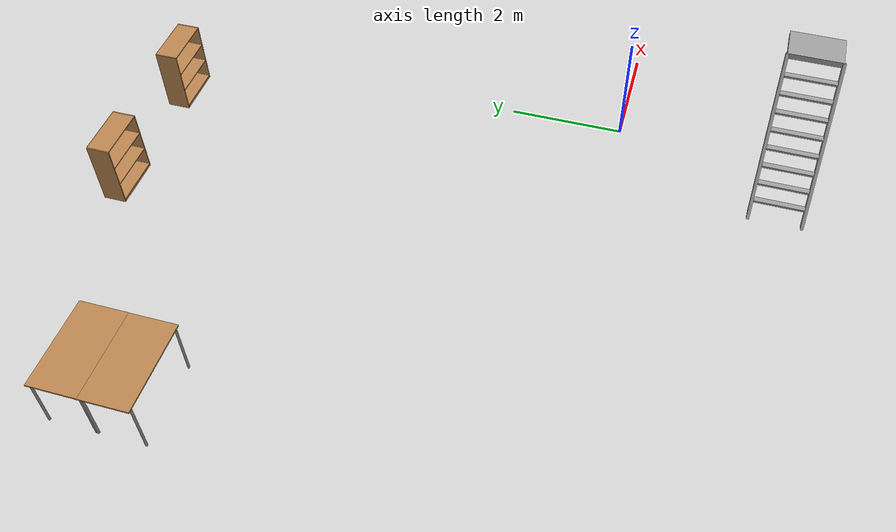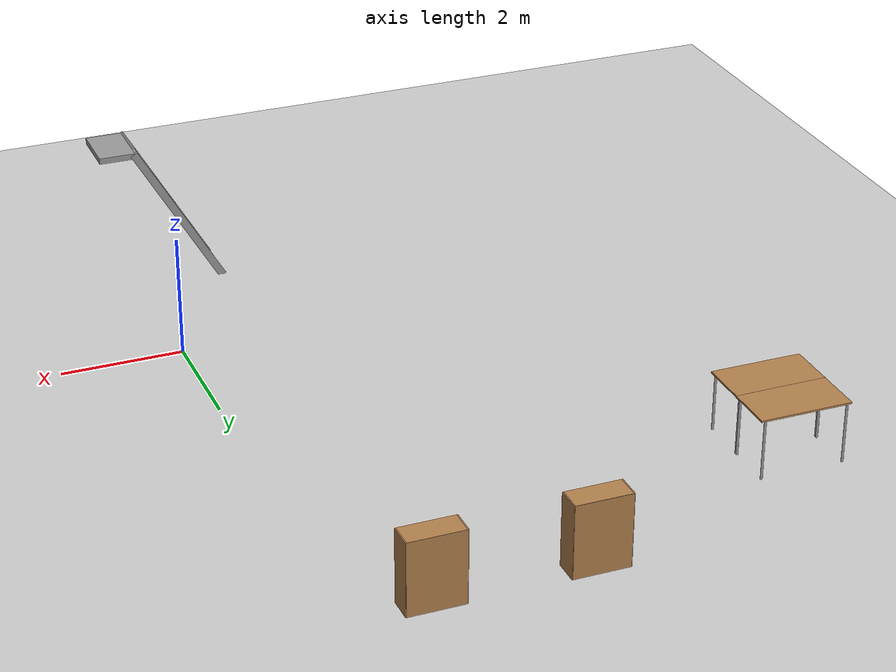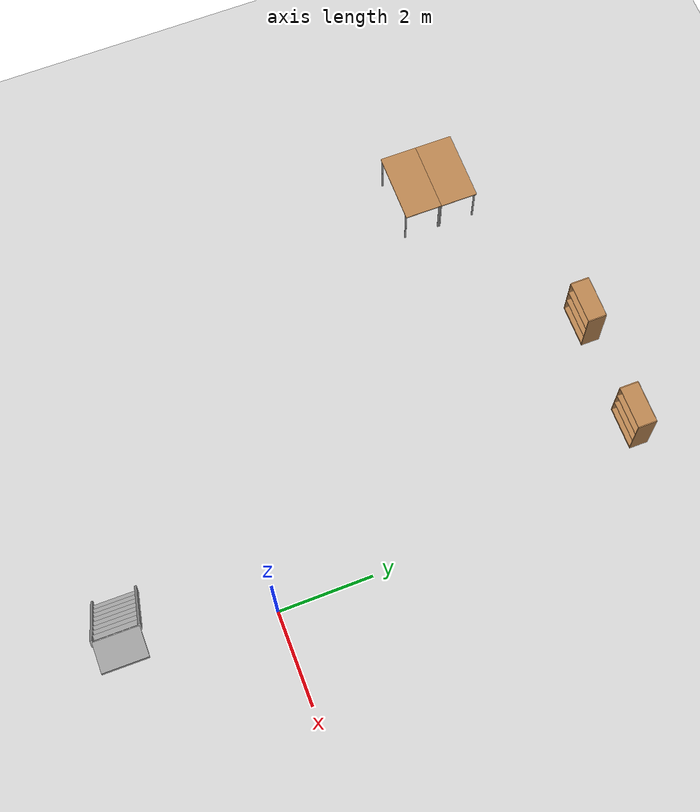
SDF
<sdf version="1.7">
 <world name="house_interior">
  <light name="sun" type="directional">
   <pose>0 0 10 0 -0 0</pose>
   <diffuse>0.8 0.8 0.8 1</diffuse>
   <specular>0.2 0.2 0.2 1</specular>
   <attenuation>
    <range>1000</range>
    <constant>0.9</constant>
    <linear>0.01</linear>
    <quadratic>0.001</quadratic>
   </attenuation>
   <direction>-0.5 0.1 -0.9</direction>
   <spot><inner_angle>0</inner_angle><outer_angle>0</outer_angle><falloff>0</falloff></spot>
  </light>
  <model name="ground_plane">
   <static>1</static>
   <link name="link">
    <collision name="collision">
     <geometry><plane><normal>0 0 1</normal><size>100 100</size></plane></geometry>
     <surface><friction><ode><mu>100</mu><mu2>50</mu2></ode></friction></surface>
    </collision>
    <visual name="visual">
     <cast_shadows>0</cast_shadows>
     <geometry><plane><normal>0 0 1</normal><size>100 100</size></plane></geometry>
     <material>
      <script><uri>file://media/materials/scripts/gazebo.material</uri><name>Gazebo/Grey</name></script>
     </material>
    </visual>
   </link>
  </model>
  <gravity>0 0 -9.8</gravity>
  <magnetic_field>6e-06 2.3e-05 -4.2e-05</magnetic_field>
  <atmosphere type="adiabatic"/>
  <physics type="ode">
   <max_step_size>0.001</max_step_size>
   <real_time_factor>1</real_time_factor>
   <real_time_update_rate>1000</real_time_update_rate>
  </physics>
  <scene><ambient>0.4 0.4 0.4 1</ambient><background>0.7 0.7 0.7 1</background><shadows>1</shadows></scene>
  <audio><device>default</device></audio>
  <spherical_coordinates>
   <surface_model>EARTH_WGS84</surface_model>
   <latitude_deg>0</latitude_deg>
   <longitude_deg>0</longitude_deg>
   <elevation>0</elevation>
   <heading_deg>0</heading_deg>
  </spherical_coordinates>
  <model name="table">
   <static>1</static>
   <link name="link">
    <collision name="surface">
     <pose>0 0 1 0 -0 0</pose>
     <geometry><box><size>1.5 0.8 0.03</size></box></geometry>
     <surface><friction><ode><mu>0.6</mu><mu2>0.6</mu2></ode></friction></surface>
    </collision>
    <visual name="visual1">
     <pose>0 0 1 0 -0 0</pose>
     <geometry><box><size>1.5 0.8 0.03</size></box></geometry>
     <material>
      <script><uri>file://media/materials/scripts/gazebo.material</uri><name>Gazebo/Wood</name></script>
     </material>
    </visual>
    <collision name="front_left_leg">
     <pose>0.68 0.38 0.5 0 -0 0</pose>
     <geometry><cylinder><radius>0.02</radius><length>1</length></cylinder></geometry>
    </collision>
    <visual name="front_left_leg">
     <pose>0.68 0.38 0.5 0 -0 0</pose>
     <geometry><cylinder><radius>0.02</radius><length>1</length></cylinder></geometry>
     <material>
      <script><uri>file://media/materials/scripts/gazebo.material</uri><name>Gazebo/Grey</name></script>
     </material>
    </visual>
    <collision name="front_right_leg">
     <pose>0.68 -0.38 0.5 0 -0 0</pose>
     <geometry><cylinder><radius>0.02</radius><length>1</length></cylinder></geometry>
    </collision>
    <visual name="front_right_leg">
     <pose>0.68 -0.38 0.5 0 -0 0</pose>
     <geometry><cylinder><radius>0.02</radius><length>1</length></cylinder></geometry>
     <material>
      <script><uri>file://media/materials/scripts/gazebo.material</uri><name>Gazebo/Grey</name></script>
     </material>
    </visual>
    <collision name="back_right_leg">
     <pose>-0.68 -0.38 0.5 0 -0 0</pose>
     <geometry><cylinder><radius>0.02</radius><length>1</length></cylinder></geometry>
    </collision>
    <visual name="back_right_leg">
     <pose>-0.68 -0.38 0.5 0 -0 0</pose>
     <geometry><cylinder><radius>0.02</radius><length>1</length></cylinder></geometry>
     <material>
      <script><uri>file://media/materials/scripts/gazebo.material</uri><name>Gazebo/Grey</name></script>
     </material>
    </visual>
    <collision name="back_left_leg">
     <pose>-0.68 0.38 0.5 0 -0 0</pose>
     <geometry><cylinder><radius>0.02</radius><length>1</length></cylinder></geometry>
    </collision>
    <visual name="back_left_leg">
     <pose>-0.68 0.38 0.5 0 -0 0</pose>
     <geometry><cylinder><radius>0.02</radius><length>1</length></cylinder></geometry>
     <material>
      <script><uri>file://media/materials/scripts/gazebo.material</uri><name>Gazebo/Grey</name></script>
     </material>
    </visual>
   </link>
   <pose>-7.46885 6.52456 0 0 -0 0</pose>
  </model>
  <model name="bookshelf">
   <static>1</static>
   <link name="link">
    <inertial><mass>1</mass></inertial>
    <collision name="back">
     <pose>0 0.005 0.6 0 -0 0</pose>
     <geometry><box><size>0.9 0.01 1.2</size></box></geometry>
    </collision>
    <visual name="visual1">
     <pose>0 0.005 0.6 0 -0 0</pose>
     <geometry><box><size>0.9 0.01 1.2</size></box></geometry>
     <material>
      <script><uri>file://media/materials/scripts/gazebo.material</uri><name>Gazebo/Wood</name></script>
     </material>
    </visual>
    <collision name="left_side">
     <pose>0.45 -0.195 0.6 0 -0 0</pose>
     <geometry><box><size>0.02 0.4 1.2</size></box></geometry>
    </collision>
    <visual name="visual2">
     <pose>0.45 -0.195 0.6 0 -0 0</pose>
     <geometry><box><size>0.02 0.4 1.2</size></box></geometry>
     <material>
      <script><uri>file://media/materials/scripts/gazebo.material</uri><name>Gazebo/Wood</name></script>
     </material>
    </visual>
    <collision name="right_side">
     <pose>-0.45 -0.195 0.6 0 -0 0</pose>
     <geometry><box><size>0.02 0.4 1.2</size></box></geometry>
    </collision>
    <visual name="visual3">
     <pose>-0.45 -0.195 0.6 0 -0 0</pose>
     <geometry><box><size>0.02 0.4 1.2</size></box></geometry>
     <material>
      <script><uri>file://media/materials/scripts/gazebo.material</uri><name>Gazebo/Wood</name></script>
     </material>
    </visual>
    <collision name="bottom">
     <pose>0 -0.195 0.03 0 -0 0</pose>
     <geometry><box><size>0.88 0.4 0.06</size></box></geometry>
    </collision>
    <visual name="visual4">
     <pose>0 -0.195 0.03 0 -0 0</pose>
     <geometry><box><size>0.88 0.4 0.06</size></box></geometry>
     <material>
      <script><uri>file://media/materials/scripts/gazebo.material</uri><name>Gazebo/Wood</name></script>
     </material>
    </visual>
    <collision name="top">
     <pose>0 -0.195 1.19 0 -0 0</pose>
     <geometry><box><size>0.88 0.4 0.02</size></box></geometry>
    </collision>
    <visual name="visual5">
     <pose>0 -0.195 1.19 0 -0 0</pose>
     <geometry><box><size>0.88 0.4 0.02</size></box></geometry>
     <material>
      <script><uri>file://media/materials/scripts/gazebo.material</uri><name>Gazebo/Wood</name></script>
     </material>
    </visual>
    <collision name="low_shelf">
     <pose>0 -0.195 0.43 0 -0 0</pose>
     <geometry><box><size>0.88 0.4 0.02</size></box></geometry>
    </collision>
    <visual name="visual6">
     <pose>0 -0.195 0.43 0 -0 0</pose>
     <geometry><box><size>0.88 0.4 0.02</size></box></geometry>
     <material>
      <script><uri>file://media/materials/scripts/gazebo.material</uri><name>Gazebo/Wood</name></script>
     </material>
    </visual>
    <collision name="high_shelf">
     <pose>0 -0.195 0.8 0 -0 0</pose>
     <geometry><box><size>0.88 0.4 0.02</size></box></geometry>
    </collision>
    <visual name="visual7">
     <pose>0 -0.195 0.8 0 -0 0</pose>
     <geometry><box><size>0.88 0.4 0.02</size></box></geometry>
     <material>
      <script><uri>file://media/materials/scripts/gazebo.material</uri><name>Gazebo/Wood</name></script>
     </material>
    </visual>
   </link>
   <pose>-3.55591 8.27448 0 0 -0 0</pose>
  </model>
  <model name="bookshelf_0">
   <static>1</static>
   <link name="link">
    <inertial><mass>1</mass></inertial>
    <collision name="back">
     <pose>0 0.005 0.6 0 -0 0</pose>
     <geometry><box><size>0.9 0.01 1.2</size></box></geometry>
    </collision>
    <visual name="visual1">
     <pose>0 0.005 0.6 0 -0 0</pose>
     <geometry><box><size>0.9 0.01 1.2</size></box></geometry>
     <material>
      <script><uri>file://media/materials/scripts/gazebo.material</uri><name>Gazebo/Wood</name></script>
     </material>
    </visual>
    <collision name="left_side">
     <pose>0.45 -0.195 0.6 0 -0 0</pose>
     <geometry><box><size>0.02 0.4 1.2</size></box></geometry>
    </collision>
    <visual name="visual2">
     <pose>0.45 -0.195 0.6 0 -0 0</pose>
     <geometry><box><size>0.02 0.4 1.2</size></box></geometry>
     <material>
      <script><uri>file://media/materials/scripts/gazebo.material</uri><name>Gazebo/Wood</name></script>
     </material>
    </visual>
    <collision name="right_side">
     <pose>-0.45 -0.195 0.6 0 -0 0</pose>
     <geometry><box><size>0.02 0.4 1.2</size></box></geometry>
    </collision>
    <visual name="visual3">
     <pose>-0.45 -0.195 0.6 0 -0 0</pose>
     <geometry><box><size>0.02 0.4 1.2</size></box></geometry>
     <material>
      <script><uri>file://media/materials/scripts/gazebo.material</uri><name>Gazebo/Wood</name></script>
     </material>
    </visual>
    <collision name="bottom">
     <pose>0 -0.195 0.03 0 -0 0</pose>
     <geometry><box><size>0.88 0.4 0.06</size></box></geometry>
    </collision>
    <visual name="visual4">
     <pose>0 -0.195 0.03 0 -0 0</pose>
     <geometry><box><size>0.88 0.4 0.06</size></box></geometry>
     <material>
      <script><uri>file://media/materials/scripts/gazebo.material</uri><name>Gazebo/Wood</name></script>
     </material>
    </visual>
    <collision name="top">
     <pose>0 -0.195 1.19 0 -0 0</pose>
     <geometry><box><size>0.88 0.4 0.02</size></box></geometry>
    </collision>
    <visual name="visual5">
     <pose>0 -0.195 1.19 0 -0 0</pose>
     <geometry><box><size>0.88 0.4 0.02</size></box></geometry>
     <material>
      <script><uri>file://media/materials/scripts/gazebo.material</uri><name>Gazebo/Wood</name></script>
     </material>
    </visual>
    <collision name="low_shelf">
     <pose>0 -0.195 0.43 0 -0 0</pose>
     <geometry><box><size>0.88 0.4 0.02</size></box></geometry>
    </collision>
    <visual name="visual6">
     <pose>0 -0.195 0.43 0 -0 0</pose>
     <geometry><box><size>0.88 0.4 0.02</size></box></geometry>
     <material>
      <script><uri>file://media/materials/scripts/gazebo.material</uri><name>Gazebo/Wood</name></script>
     </material>
    </visual>
    <collision name="high_shelf">
     <pose>0 -0.195 0.8 0 -0 0</pose>
     <geometry><box><size>0.88 0.4 0.02</size></box></geometry>
    </collision>
    <visual name="visual7">
     <pose>0 -0.195 0.8 0 -0 0</pose>
     <geometry><box><size>0.88 0.4 0.02</size></box></geometry>
     <material>
      <script><uri>file://media/materials/scripts/gazebo.material</uri><name>Gazebo/Wood</name></script>
     </material>
    </visual>
   </link>
   <pose>-1.09501 8.26834 0 0 -0 0</pose>
  </model>
  <model name="ladder_60deg_0rails">
   <static>1</static>
   <link name="step0">
    <pose>0 0.15396 0.266667 0 -0 0</pose>
    <inertial>
     <mass>9.75482</mass>
     <inertia>
      <ixx>0.00957124</ixx>
      <iyy>0.65963</iyy>
      <izz>0.666842</izz>
      <ixy>0</ixy>
      <ixz>0</ixz>
      <iyz>0</iyz>
     </inertia>
    </inertial>
    <collision name="collision"><geometry><box><size>0.9 0.1016 0.0381</size></box></geometry></collision>
    <visual name="visual">
     <geometry><box><size>0.9 0.1016 0.0381</size></box></geometry>
     <material>
      <script><uri>file://media/materials/scripts/gazebo.material</uri><name>Gazebo/Grey</name></script>
     </material>
    </visual>
   </link>
   <link name="step1">
    <pose>0 0.30792 0.533333 0 -0 0</pose>
    <inertial>
     <mass>9.75482</mass>
     <inertia>
      <ixx>0.00957124</ixx>
      <iyy>0.65963</iyy>
      <izz>0.666842</izz>
      <ixy>0</ixy>
      <ixz>0</ixz>
      <iyz>0</iyz>
     </inertia>
    </inertial>
    <collision name="collision"><geometry><box><size>0.9 0.1016 0.0381</size></box></geometry></collision>
    <visual name="visual">
     <geometry><box><size>0.9 0.1016 0.0381</size></box></geometry>
     <material>
      <script><uri>file://media/materials/scripts/gazebo.material</uri><name>Gazebo/Grey</name></script>
     </material>
    </visual>
   </link>
   <link name="step2">
    <pose>0 0.46188 0.8 0 -0 0</pose>
    <inertial>
     <mass>9.75482</mass>
     <inertia>
      <ixx>0.00957124</ixx>
      <iyy>0.65963</iyy>
      <izz>0.666842</izz>
      <ixy>0</ixy>
      <ixz>0</ixz>
      <iyz>0</iyz>
     </inertia>
    </inertial>
    <collision name="collision"><geometry><box><size>0.9 0.1016 0.0381</size></box></geometry></collision>
    <visual name="visual">
     <geometry><box><size>0.9 0.1016 0.0381</size></box></geometry>
     <material>
      <script><uri>file://media/materials/scripts/gazebo.material</uri><name>Gazebo/Grey</name></script>
     </material>
    </visual>
   </link>
   <link name="step3">
    <pose>0 0.61584 1.06667 0 -0 0</pose>
    <inertial>
     <mass>9.75482</mass>
     <inertia>
      <ixx>0.00957124</ixx>
      <iyy>0.65963</iyy>
      <izz>0.666842</izz>
      <ixy>0</ixy>
      <ixz>0</ixz>
      <iyz>0</iyz>
     </inertia>
    </inertial>
    <collision name="collision"><geometry><box><size>0.9 0.1016 0.0381</size></box></geometry></collision>
    <visual name="visual">
     <geometry><box><size>0.9 0.1016 0.0381</size></box></geometry>
     <material>
      <script><uri>file://media/materials/scripts/gazebo.material</uri><name>Gazebo/Grey</name></script>
     </material>
    </visual>
   </link>
   <link name="step4">
    <pose>0 0.7698 1.33333 0 -0 0</pose>
    <inertial>
     <mass>9.75482</mass>
     <inertia>
      <ixx>0.00957124</ixx>
      <iyy>0.65963</iyy>
      <izz>0.666842</izz>
      <ixy>0</ixy>
      <ixz>0</ixz>
      <iyz>0</iyz>
     </inertia>
    </inertial>
    <collision name="collision"><geometry><box><size>0.9 0.1016 0.0381</size></box></geometry></collision>
    <visual name="visual">
     <geometry><box><size>0.9 0.1016 0.0381</size></box></geometry>
     <material>
      <script><uri>file://media/materials/scripts/gazebo.material</uri><name>Gazebo/Grey</name></script>
     </material>
    </visual>
   </link>
   <link name="step5">
    <pose>0 0.92376 1.6 0 -0 0</pose>
    <inertial>
     <mass>9.75482</mass>
     <inertia>
      <ixx>0.00957124</ixx>
      <iyy>0.65963</iyy>
      <izz>0.666842</izz>
      <ixy>0</ixy>
      <ixz>0</ixz>
      <iyz>0</iyz>
     </inertia>
    </inertial>
    <collision name="collision"><geometry><box><size>0.9 0.1016 0.0381</size></box></geometry></collision>
    <visual name="visual">
     <geometry><box><size>0.9 0.1016 0.0381</size></box></geometry>
     <material>
      <script><uri>file://media/materials/scripts/gazebo.material</uri><name>Gazebo/Grey</name></script>
     </material>
    </visual>
   </link>
   <link name="step6">
    <pose>0 1.07772 1.86667 0 -0 0</pose>
    <inertial>
     <mass>9.75482</mass>
     <inertia>
      <ixx>0.00957124</ixx>
      <iyy>0.65963</iyy>
      <izz>0.666842</izz>
      <ixy>0</ixy>
      <ixz>0</ixz>
      <iyz>0</iyz>
     </inertia>
    </inertial>
    <collision name="collision"><geometry><box><size>0.9 0.1016 0.0381</size></box></geometry></collision>
    <visual name="visual">
     <geometry><box><size>0.9 0.1016 0.0381</size></box></geometry>
     <material>
      <script><uri>file://media/materials/scripts/gazebo.material</uri><name>Gazebo/Grey</name></script>
     </material>
    </visual>
   </link>
   <link name="step7">
    <pose>0 1.23168 2.13333 0 -0 0</pose>
    <inertial>
     <mass>9.75482</mass>
     <inertia>
      <ixx>0.00957124</ixx>
      <iyy>0.65963</iyy>
      <izz>0.666842</izz>
      <ixy>0</ixy>
      <ixz>0</ixz>
      <iyz>0</iyz>
     </inertia>
    </inertial>
    <collision name="collision"><geometry><box><size>0.9 0.1016 0.0381</size></box></geometry></collision>
    <visual name="visual">
     <geometry><box><size>0.9 0.1016 0.0381</size></box></geometry>
     <material>
      <script><uri>file://media/materials/scripts/gazebo.material</uri><name>Gazebo/Grey</name></script>
     </material>
    </visual>
   </link>
   <link name="landing">
    <pose>0 1.68564 2.4 0 -0 0</pose>
    <inertial>
     <mass>57.6072</mass>
     <inertia><ixx>1.73518</ixx><iyy>3.89545</iyy><izz>5.6167</izz><ixy>0</ixy><ixz>0</ixz><iyz>0</iyz></inertia>
    </inertial>
    <collision name="collision"><geometry><box><size>0.9 0.6 0.1016</size></box></geometry></collision>
    <visual name="visual">
     <geometry><box><size>0.9 0.6 0.1016</size></box></geometry>
     <material>
      <script><uri>file://media/materials/scripts/gazebo.material</uri><name>Gazebo/Grey</name></script>
     </material>
    </visual>
   </link>
   <link name="left_side_wall">
    <pose>-0.45 0.69282 1.2 1.0472 -0 0</pose>
    <collision name="collision"><geometry><box><size>0.0508 2.85128 0.13</size></box></geometry></collision>
    <visual name="visual">
     <geometry><box><size>0.0508 2.85128 0.13</size></box></geometry>
     <material>
      <script><uri>file://media/materials/scripts/gazebo.material</uri><name>Gazebo/Grey</name></script>
     </material>
    </visual>
   </link>
   <link name="right_side_wall">
    <pose>0.45 0.69282 1.2 1.0472 -0 0</pose>
    <collision name="collision"><geometry><box><size>0.0508 2.85128 0.13</size></box></geometry></collision>
    <visual name="visual">
     <geometry><box><size>0.0508 2.85128 0.13</size></box></geometry>
     <material>
      <script><uri>file://media/materials/scripts/gazebo.material</uri><name>Gazebo/Grey</name></script>
     </material>
    </visual>
   </link>
   <pose>-1.43725 -2.91526 0 0 0 -1.57889</pose>
  </model>
  <model name="table_0">
   <static>1</static>
   <link name="link">
    <collision name="surface">
     <pose>0 0 1 0 -0 0</pose>
     <geometry><box><size>1.5 0.8 0.03</size></box></geometry>
     <surface><friction><ode><mu>0.6</mu><mu2>0.6</mu2></ode></friction></surface>
    </collision>
    <visual name="visual1">
     <pose>0 0 1 0 -0 0</pose>
     <geometry><box><size>1.5 0.8 0.03</size></box></geometry>
     <material>
      <script><uri>file://media/materials/scripts/gazebo.material</uri><name>Gazebo/Wood</name></script>
     </material>
    </visual>
    <collision name="front_left_leg">
     <pose>0.68 0.38 0.5 0 -0 0</pose>
     <geometry><cylinder><radius>0.02</radius><length>1</length></cylinder></geometry>
    </collision>
    <visual name="front_left_leg">
     <pose>0.68 0.38 0.5 0 -0 0</pose>
     <geometry><cylinder><radius>0.02</radius><length>1</length></cylinder></geometry>
     <material>
      <script><uri>file://media/materials/scripts/gazebo.material</uri><name>Gazebo/Grey</name></script>
     </material>
    </visual>
    <collision name="front_right_leg">
     <pose>0.68 -0.38 0.5 0 -0 0</pose>
     <geometry><cylinder><radius>0.02</radius><length>1</length></cylinder></geometry>
    </collision>
    <visual name="front_right_leg">
     <pose>0.68 -0.38 0.5 0 -0 0</pose>
     <geometry><cylinder><radius>0.02</radius><length>1</length></cylinder></geometry>
     <material>
      <script><uri>file://media/materials/scripts/gazebo.material</uri><name>Gazebo/Grey</name></script>
     </material>
    </visual>
    <collision name="back_right_leg">
     <pose>-0.68 -0.38 0.5 0 -0 0</pose>
     <geometry><cylinder><radius>0.02</radius><length>1</length></cylinder></geometry>
    </collision>
    <visual name="back_right_leg">
     <pose>-0.68 -0.38 0.5 0 -0 0</pose>
     <geometry><cylinder><radius>0.02</radius><length>1</length></cylinder></geometry>
     <material>
      <script><uri>file://media/materials/scripts/gazebo.material</uri><name>Gazebo/Grey</name></script>
     </material>
    </visual>
    <collision name="back_left_leg">
     <pose>-0.68 0.38 0.5 0 -0 0</pose>
     <geometry><cylinder><radius>0.02</radius><length>1</length></cylinder></geometry>
    </collision>
    <visual name="back_left_leg">
     <pose>-0.68 0.38 0.5 0 -0 0</pose>
     <geometry><cylinder><radius>0.02</radius><length>1</length></cylinder></geometry>
     <material>
      <script><uri>file://media/materials/scripts/gazebo.material</uri><name>Gazebo/Grey</name></script>
     </material>
    </visual>
   </link>
   <pose>-7.47146 5.73164 0 0 -0 0</pose>
  </model>
 </world>
</sdf>
